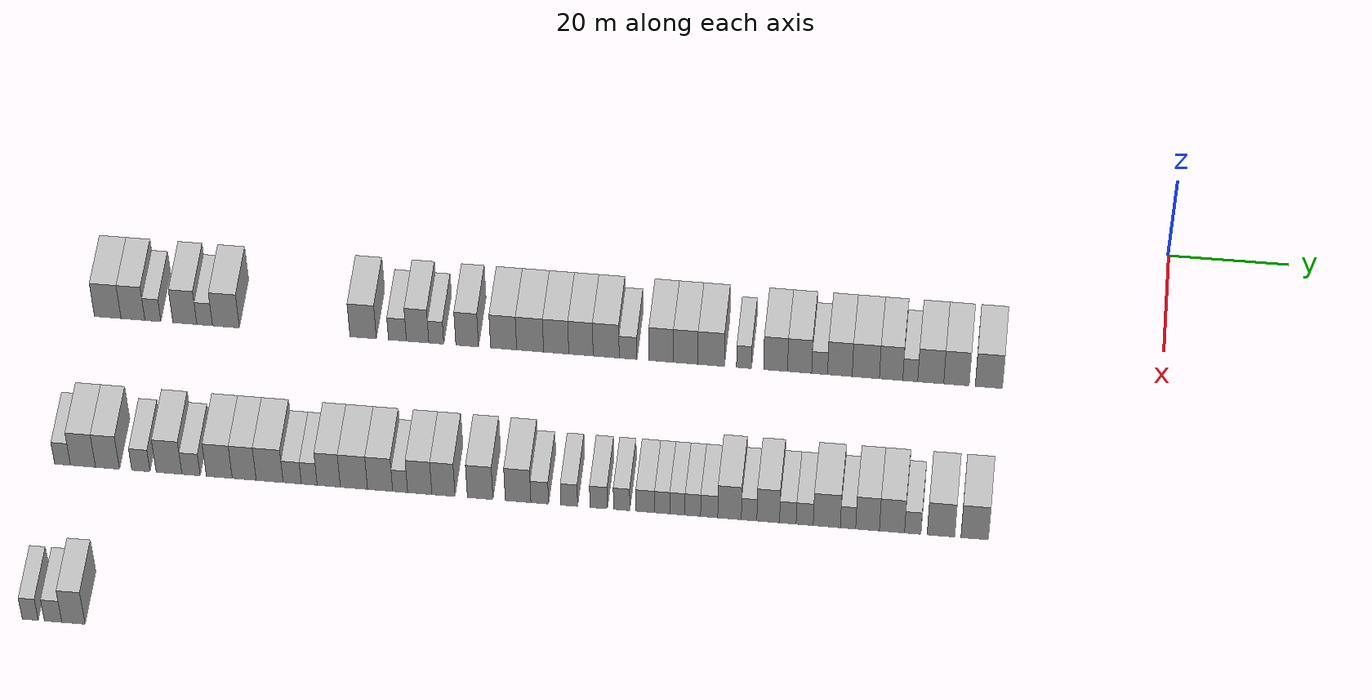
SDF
<sdf version="1.6">
 <world name="default">
  <model name="building_80">
   <static>1</static>
   <pose>25.0000 -173.6618 0 0.000000 0.000000 0.000000</pose>
   <link name="link">
    <pose>0 0 4.50 0 0 0</pose>
    <collision name="collision"><geometry><box><size>10.0000 4.4266 9.0000</size></box></geometry></collision>
    <visual name="visual">
     <cast_shadows>0</cast_shadows>
     <geometry><box><size>10.0000 4.4266 9.0000</size></box></geometry>
     <material>
      <script>
       <uri>model://HANNAS_wall/materials/scripts</uri>
       <uri>model://HANNAS_wall/materials/textures</uri>
       <name>vrc/HANNAS_wall</name>
      </script>
     </material>
    </visual>
   </link>
  </model>
  <model name="building_81">
   <static>1</static>
   <pose>25.0000 -169.4573 0 0.000000 0.000000 0.000000</pose>
   <link name="link">
    <pose>0 0 4.50 0 0 0</pose>
    <collision name="collision"><geometry><box><size>10.0000 3.9823 9.0000</size></box></geometry></collision>
    <visual name="visual">
     <cast_shadows>0</cast_shadows>
     <geometry><box><size>10.0000 3.9823 9.0000</size></box></geometry>
     <material>
      <script>
       <uri>model://HANNAS_wall/materials/scripts</uri>
       <uri>model://HANNAS_wall/materials/textures</uri>
       <name>vrc/HANNAS_wall</name>
      </script>
     </material>
    </visual>
   </link>
  </model>
  <model name="building_82">
   <static>1</static>
   <pose>25.0000 -166.1337 0 0.000000 0.000000 0.000000</pose>
   <link name="link">
    <pose>0 0 3.00 0 0 0</pose>
    <collision name="collision"><geometry><box><size>10.0000 2.6650 6.0000</size></box></geometry></collision>
    <visual name="visual">
     <cast_shadows>0</cast_shadows>
     <geometry><box><size>10.0000 2.6650 6.0000</size></box></geometry>
     <material>
      <script>
       <uri>model://HANNAS_wall/materials/scripts</uri>
       <uri>model://HANNAS_wall/materials/textures</uri>
       <name>vrc/HANNAS_wall</name>
      </script>
     </material>
    </visual>
   </link>
  </model>
  <model name="building_83">
   <static>1</static>
   <pose>25.0000 -160.8028 0 0.000000 0.000000 0.000000</pose>
   <link name="link">
    <pose>0 0 4.50 0 0 0</pose>
    <collision name="collision"><geometry><box><size>10.0000 3.9967 9.0000</size></box></geometry></collision>
    <visual name="visual">
     <cast_shadows>0</cast_shadows>
     <geometry><box><size>10.0000 3.9967 9.0000</size></box></geometry>
     <material>
      <script>
       <uri>model://HANNAS_wall/materials/scripts</uri>
       <uri>model://HANNAS_wall/materials/textures</uri>
       <name>vrc/HANNAS_wall</name>
      </script>
     </material>
    </visual>
   </link>
  </model>
  <model name="building_84">
   <static>1</static>
   <pose>25.0000 -157.5020 0 0.000000 0.000000 0.000000</pose>
   <link name="link">
    <pose>0 0 3.00 0 0 0</pose>
    <collision name="collision"><geometry><box><size>10.0000 2.6050 6.0000</size></box></geometry></collision>
    <visual name="visual">
     <cast_shadows>0</cast_shadows>
     <geometry><box><size>10.0000 2.6050 6.0000</size></box></geometry>
     <material>
      <script>
       <uri>model://HANNAS_wall/materials/scripts</uri>
       <uri>model://HANNAS_wall/materials/textures</uri>
       <name>vrc/HANNAS_wall</name>
      </script>
     </material>
    </visual>
   </link>
  </model>
  <model name="building_85">
   <static>1</static>
   <pose>25.0000 -153.9610 0 0.000000 0.000000 0.000000</pose>
   <link name="link">
    <pose>0 0 4.50 0 0 0</pose>
    <collision name="collision"><geometry><box><size>10.0000 4.4769 9.0000</size></box></geometry></collision>
    <visual name="visual">
     <cast_shadows>0</cast_shadows>
     <geometry><box><size>10.0000 4.4769 9.0000</size></box></geometry>
     <material>
      <script>
       <uri>model://HANNAS_wall/materials/scripts</uri>
       <uri>model://HANNAS_wall/materials/textures</uri>
       <name>vrc/HANNAS_wall</name>
      </script>
     </material>
    </visual>
   </link>
  </model>
  <model name="building_86">
   <static>1</static>
   <pose>25.0000 -131.1573 0 0.000000 0.000000 0.000000</pose>
   <link name="link">
    <pose>0 0 4.50 0 0 0</pose>
    <collision name="collision"><geometry><box><size>10.0000 4.3769 9.0000</size></box></geometry></collision>
    <visual name="visual">
     <cast_shadows>0</cast_shadows>
     <geometry><box><size>10.0000 4.3769 9.0000</size></box></geometry>
     <material>
      <script>
       <uri>model://HANNAS_wall/materials/scripts</uri>
       <uri>model://HANNAS_wall/materials/textures</uri>
       <name>vrc/HANNAS_wall</name>
      </script>
     </material>
    </visual>
   </link>
  </model>
  <model name="building_87">
   <static>1</static>
   <pose>25.0000 -125.4782 0 0.000000 0.000000 0.000000</pose>
   <link name="link">
    <pose>0 0 3.00 0 0 0</pose>
    <collision name="collision"><geometry><box><size>10.0000 2.9813 6.0000</size></box></geometry></collision>
    <visual name="visual">
     <cast_shadows>0</cast_shadows>
     <geometry><box><size>10.0000 2.9813 6.0000</size></box></geometry>
     <material>
      <script>
       <uri>model://HANNAS_wall/materials/scripts</uri>
       <uri>model://HANNAS_wall/materials/textures</uri>
       <name>vrc/HANNAS_wall</name>
      </script>
     </material>
    </visual>
   </link>
  </model>
  <model name="building_88">
   <static>1</static>
   <pose>25.0000 -122.1337 0 0.000000 0.000000 0.000000</pose>
   <link name="link">
    <pose>0 0 4.50 0 0 0</pose>
    <collision name="collision"><geometry><box><size>10.0000 3.7076 9.0000</size></box></geometry></collision>
    <visual name="visual">
     <cast_shadows>0</cast_shadows>
     <geometry><box><size>10.0000 3.7076 9.0000</size></box></geometry>
     <material>
      <script>
       <uri>model://HANNAS_wall/materials/scripts</uri>
       <uri>model://HANNAS_wall/materials/textures</uri>
       <name>vrc/HANNAS_wall</name>
      </script>
     </material>
    </visual>
   </link>
  </model>
  <model name="building_89">
   <static>1</static>
   <pose>25.0000 -119.0433 0 0.000000 0.000000 0.000000</pose>
   <link name="link">
    <pose>0 0 3.00 0 0 0</pose>
    <collision name="collision"><geometry><box><size>10.0000 2.4733 6.0000</size></box></geometry></collision>
    <visual name="visual">
     <cast_shadows>0</cast_shadows>
     <geometry><box><size>10.0000 2.4733 6.0000</size></box></geometry>
     <material>
      <script>
       <uri>model://HANNAS_wall/materials/scripts</uri>
       <uri>model://HANNAS_wall/materials/textures</uri>
       <name>vrc/HANNAS_wall</name>
      </script>
     </material>
    </visual>
   </link>
  </model>
  <model name="building_90">
   <static>1</static>
   <pose>25.0000 -113.9285 0 0.000000 0.000000 0.000000</pose>
   <link name="link">
    <pose>0 0 4.50 0 0 0</pose>
    <collision name="collision"><geometry><box><size>10.0000 3.7564 9.0000</size></box></geometry></collision>
    <visual name="visual">
     <cast_shadows>0</cast_shadows>
     <geometry><box><size>10.0000 3.7564 9.0000</size></box></geometry>
     <material>
      <script>
       <uri>model://HANNAS_wall/materials/scripts</uri>
       <uri>model://HANNAS_wall/materials/textures</uri>
       <name>vrc/HANNAS_wall</name>
      </script>
     </material>
    </visual>
   </link>
  </model>
  <model name="building_91">
   <static>1</static>
   <pose>25.0000 -107.8970 0 0.000000 0.000000 0.000000</pose>
   <link name="link">
    <pose>0 0 4.50 0 0 0</pose>
    <collision name="collision"><geometry><box><size>10.0000 4.3066 9.0000</size></box></geometry></collision>
    <visual name="visual">
     <cast_shadows>0</cast_shadows>
     <geometry><box><size>10.0000 4.3066 9.0000</size></box></geometry>
     <material>
      <script>
       <uri>model://HANNAS_wall/materials/scripts</uri>
       <uri>model://HANNAS_wall/materials/textures</uri>
       <name>vrc/HANNAS_wall</name>
      </script>
     </material>
    </visual>
   </link>
  </model>
  <model name="building_92">
   <static>1</static>
   <pose>25.0000 -103.5173 0 0.000000 0.000000 0.000000</pose>
   <link name="link">
    <pose>0 0 4.50 0 0 0</pose>
    <collision name="collision"><geometry><box><size>10.0000 4.4529 9.0000</size></box></geometry></collision>
    <visual name="visual">
     <cast_shadows>0</cast_shadows>
     <geometry><box><size>10.0000 4.4529 9.0000</size></box></geometry>
     <material>
      <script>
       <uri>model://HANNAS_wall/materials/scripts</uri>
       <uri>model://HANNAS_wall/materials/textures</uri>
       <name>vrc/HANNAS_wall</name>
      </script>
     </material>
    </visual>
   </link>
  </model>
  <model name="building_93">
   <static>1</static>
   <pose>25.0000 -99.2168 0 0.000000 0.000000 0.000000</pose>
   <link name="link">
    <pose>0 0 4.50 0 0 0</pose>
    <collision name="collision"><geometry><box><size>10.0000 4.1479 9.0000</size></box></geometry></collision>
    <visual name="visual">
     <cast_shadows>0</cast_shadows>
     <geometry><box><size>10.0000 4.1479 9.0000</size></box></geometry>
     <material>
      <script>
       <uri>model://HANNAS_wall/materials/scripts</uri>
       <uri>model://HANNAS_wall/materials/textures</uri>
       <name>vrc/HANNAS_wall</name>
      </script>
     </material>
    </visual>
   </link>
  </model>
  <model name="building_94">
   <static>1</static>
   <pose>25.0000 -95.1289 0 0.000000 0.000000 0.000000</pose>
   <link name="link">
    <pose>0 0 4.50 0 0 0</pose>
    <collision name="collision"><geometry><box><size>10.0000 4.0280 9.0000</size></box></geometry></collision>
    <visual name="visual">
     <cast_shadows>0</cast_shadows>
     <geometry><box><size>10.0000 4.0280 9.0000</size></box></geometry>
     <material>
      <script>
       <uri>model://HANNAS_wall/materials/scripts</uri>
       <uri>model://HANNAS_wall/materials/textures</uri>
       <name>vrc/HANNAS_wall</name>
      </script>
     </material>
    </visual>
   </link>
  </model>
  <model name="building_95">
   <static>1</static>
   <pose>25.0000 -90.9672 0 0.000000 0.000000 0.000000</pose>
   <link name="link">
    <pose>0 0 4.50 0 0 0</pose>
    <collision name="collision"><geometry><box><size>10.0000 4.2955 9.0000</size></box></geometry></collision>
    <visual name="visual">
     <cast_shadows>0</cast_shadows>
     <geometry><box><size>10.0000 4.2955 9.0000</size></box></geometry>
     <material>
      <script>
       <uri>model://HANNAS_wall/materials/scripts</uri>
       <uri>model://HANNAS_wall/materials/textures</uri>
       <name>vrc/HANNAS_wall</name>
      </script>
     </material>
    </visual>
   </link>
  </model>
  <model name="building_96">
   <static>1</static>
   <pose>25.0000 -87.3544 0 0.000000 0.000000 0.000000</pose>
   <link name="link">
    <pose>0 0 3.00 0 0 0</pose>
    <collision name="collision"><geometry><box><size>10.0000 2.9301 6.0000</size></box></geometry></collision>
    <visual name="visual">
     <cast_shadows>0</cast_shadows>
     <geometry><box><size>10.0000 2.9301 6.0000</size></box></geometry>
     <material>
      <script>
       <uri>model://HANNAS_wall/materials/scripts</uri>
       <uri>model://HANNAS_wall/materials/textures</uri>
       <name>vrc/HANNAS_wall</name>
      </script>
     </material>
    </visual>
   </link>
  </model>
  <model name="building_97">
   <static>1</static>
   <pose>25.0000 -81.8790 0 0.000000 0.000000 0.000000</pose>
   <link name="link">
    <pose>0 0 4.50 0 0 0</pose>
    <collision name="collision"><geometry><box><size>10.0000 4.0208 9.0000</size></box></geometry></collision>
    <visual name="visual">
     <cast_shadows>0</cast_shadows>
     <geometry><box><size>10.0000 4.0208 9.0000</size></box></geometry>
     <material>
      <script>
       <uri>model://HANNAS_wall/materials/scripts</uri>
       <uri>model://HANNAS_wall/materials/textures</uri>
       <name>vrc/HANNAS_wall</name>
      </script>
     </material>
    </visual>
   </link>
  </model>
  <model name="building_98">
   <static>1</static>
   <pose>25.0000 -77.8488 0 0.000000 0.000000 0.000000</pose>
   <link name="link">
    <pose>0 0 4.50 0 0 0</pose>
    <collision name="collision"><geometry><box><size>10.0000 4.0396 9.0000</size></box></geometry></collision>
    <visual name="visual">
     <cast_shadows>0</cast_shadows>
     <geometry><box><size>10.0000 4.0396 9.0000</size></box></geometry>
     <material>
      <script>
       <uri>model://HANNAS_wall/materials/scripts</uri>
       <uri>model://HANNAS_wall/materials/textures</uri>
       <name>vrc/HANNAS_wall</name>
      </script>
     </material>
    </visual>
   </link>
  </model>
  <model name="building_99">
   <static>1</static>
   <pose>25.0000 -73.6658 0 0.000000 0.000000 0.000000</pose>
   <link name="link">
    <pose>0 0 4.50 0 0 0</pose>
    <collision name="collision"><geometry><box><size>10.0000 4.3265 9.0000</size></box></geometry></collision>
    <visual name="visual">
     <cast_shadows>0</cast_shadows>
     <geometry><box><size>10.0000 4.3265 9.0000</size></box></geometry>
     <material>
      <script>
       <uri>model://HANNAS_wall/materials/scripts</uri>
       <uri>model://HANNAS_wall/materials/textures</uri>
       <name>vrc/HANNAS_wall</name>
      </script>
     </material>
    </visual>
   </link>
  </model>
  <model name="building_100">
   <static>1</static>
   <pose>25.0000 -68.2700 0 0.000000 0.000000 0.000000</pose>
   <link name="link">
    <pose>0 0 3.00 0 0 0</pose>
    <collision name="collision"><geometry><box><size>10.0000 2.4651 6.0000</size></box></geometry></collision>
    <visual name="visual">
     <cast_shadows>0</cast_shadows>
     <geometry><box><size>10.0000 2.4651 6.0000</size></box></geometry>
     <material>
      <script>
       <uri>model://HANNAS_wall/materials/scripts</uri>
       <uri>model://HANNAS_wall/materials/textures</uri>
       <name>vrc/HANNAS_wall</name>
      </script>
     </material>
    </visual>
   </link>
  </model>
  <model name="building_101">
   <static>1</static>
   <pose>25.0000 -63.0754 0 0.000000 0.000000 0.000000</pose>
   <link name="link">
    <pose>0 0 4.50 0 0 0</pose>
    <collision name="collision"><geometry><box><size>10.0000 3.9240 9.0000</size></box></geometry></collision>
    <visual name="visual">
     <cast_shadows>0</cast_shadows>
     <geometry><box><size>10.0000 3.9240 9.0000</size></box></geometry>
     <material>
      <script>
       <uri>model://HANNAS_wall/materials/scripts</uri>
       <uri>model://HANNAS_wall/materials/textures</uri>
       <name>vrc/HANNAS_wall</name>
      </script>
     </material>
    </visual>
   </link>
  </model>
  <model name="building_102">
   <static>1</static>
   <pose>25.0000 -59.1349 0 0.000000 0.000000 0.000000</pose>
   <link name="link">
    <pose>0 0 4.50 0 0 0</pose>
    <collision name="collision"><geometry><box><size>10.0000 3.9571 9.0000</size></box></geometry></collision>
    <visual name="visual">
     <cast_shadows>0</cast_shadows>
     <geometry><box><size>10.0000 3.9571 9.0000</size></box></geometry>
     <material>
      <script>
       <uri>model://HANNAS_wall/materials/scripts</uri>
       <uri>model://HANNAS_wall/materials/textures</uri>
       <name>vrc/HANNAS_wall</name>
      </script>
     </material>
    </visual>
   </link>
  </model>
  <model name="building_103">
   <static>1</static>
   <pose>25.0000 -55.8554 0 0.000000 0.000000 0.000000</pose>
   <link name="link">
    <pose>0 0 3.00 0 0 0</pose>
    <collision name="collision"><geometry><box><size>10.0000 2.6018 6.0000</size></box></geometry></collision>
    <visual name="visual">
     <cast_shadows>0</cast_shadows>
     <geometry><box><size>10.0000 2.6018 6.0000</size></box></geometry>
     <material>
      <script>
       <uri>model://HANNAS_wall/materials/scripts</uri>
       <uri>model://HANNAS_wall/materials/textures</uri>
       <name>vrc/HANNAS_wall</name>
      </script>
     </material>
    </visual>
   </link>
  </model>
  <model name="building_104">
   <static>1</static>
   <pose>25.0000 -52.5349 0 0.000000 0.000000 0.000000</pose>
   <link name="link">
    <pose>0 0 4.50 0 0 0</pose>
    <collision name="collision"><geometry><box><size>10.0000 4.0392 9.0000</size></box></geometry></collision>
    <visual name="visual">
     <cast_shadows>0</cast_shadows>
     <geometry><box><size>10.0000 4.0392 9.0000</size></box></geometry>
     <material>
      <script>
       <uri>model://HANNAS_wall/materials/scripts</uri>
       <uri>model://HANNAS_wall/materials/textures</uri>
       <name>vrc/HANNAS_wall</name>
      </script>
     </material>
    </visual>
   </link>
  </model>
  <model name="building_105">
   <static>1</static>
   <pose>25.0000 -48.2838 0 0.000000 0.000000 0.000000</pose>
   <link name="link">
    <pose>0 0 4.50 0 0 0</pose>
    <collision name="collision"><geometry><box><size>10.0000 4.4631 9.0000</size></box></geometry></collision>
    <visual name="visual">
     <cast_shadows>0</cast_shadows>
     <geometry><box><size>10.0000 4.4631 9.0000</size></box></geometry>
     <material>
      <script>
       <uri>model://HANNAS_wall/materials/scripts</uri>
       <uri>model://HANNAS_wall/materials/textures</uri>
       <name>vrc/HANNAS_wall</name>
      </script>
     </material>
    </visual>
   </link>
  </model>
  <model name="building_106">
   <static>1</static>
   <pose>25.0000 -44.1364 0 0.000000 0.000000 0.000000</pose>
   <link name="link">
    <pose>0 0 4.50 0 0 0</pose>
    <collision name="collision"><geometry><box><size>10.0000 3.8316 9.0000</size></box></geometry></collision>
    <visual name="visual">
     <cast_shadows>0</cast_shadows>
     <geometry><box><size>10.0000 3.8316 9.0000</size></box></geometry>
     <material>
      <script>
       <uri>model://HANNAS_wall/materials/scripts</uri>
       <uri>model://HANNAS_wall/materials/textures</uri>
       <name>vrc/HANNAS_wall</name>
      </script>
     </material>
    </visual>
   </link>
  </model>
  <model name="building_107">
   <static>1</static>
   <pose>25.0000 -40.9975 0 0.000000 0.000000 0.000000</pose>
   <link name="link">
    <pose>0 0 3.00 0 0 0</pose>
    <collision name="collision"><geometry><box><size>10.0000 2.4463 6.0000</size></box></geometry></collision>
    <visual name="visual">
     <cast_shadows>0</cast_shadows>
     <geometry><box><size>10.0000 2.4463 6.0000</size></box></geometry>
     <material>
      <script>
       <uri>model://HANNAS_wall/materials/scripts</uri>
       <uri>model://HANNAS_wall/materials/textures</uri>
       <name>vrc/HANNAS_wall</name>
      </script>
     </material>
    </visual>
   </link>
  </model>
  <model name="building_108">
   <static>1</static>
   <pose>25.0000 -37.6462 0 0.000000 0.000000 0.000000</pose>
   <link name="link">
    <pose>0 0 4.50 0 0 0</pose>
    <collision name="collision"><geometry><box><size>10.0000 4.2563 9.0000</size></box></geometry></collision>
    <visual name="visual">
     <cast_shadows>0</cast_shadows>
     <geometry><box><size>10.0000 4.2563 9.0000</size></box></geometry>
     <material>
      <script>
       <uri>model://HANNAS_wall/materials/scripts</uri>
       <uri>model://HANNAS_wall/materials/textures</uri>
       <name>vrc/HANNAS_wall</name>
      </script>
     </material>
    </visual>
   </link>
  </model>
  <model name="building_109">
   <static>1</static>
   <pose>25.0000 -33.4382 0 0.000000 0.000000 0.000000</pose>
   <link name="link">
    <pose>0 0 4.50 0 0 0</pose>
    <collision name="collision"><geometry><box><size>10.0000 4.1598 9.0000</size></box></geometry></collision>
    <visual name="visual">
     <cast_shadows>0</cast_shadows>
     <geometry><box><size>10.0000 4.1598 9.0000</size></box></geometry>
     <material>
      <script>
       <uri>model://HANNAS_wall/materials/scripts</uri>
       <uri>model://HANNAS_wall/materials/textures</uri>
       <name>vrc/HANNAS_wall</name>
      </script>
     </material>
    </visual>
   </link>
  </model>
  <model name="building_110">
   <static>1</static>
   <pose>25.0000 -28.1421 0 0.000000 0.000000 0.000000</pose>
   <link name="link">
    <pose>0 0 4.50 0 0 0</pose>
    <collision name="collision"><geometry><box><size>10.0000 4.4325 9.0000</size></box></geometry></collision>
    <visual name="visual">
     <cast_shadows>0</cast_shadows>
     <geometry><box><size>10.0000 4.4325 9.0000</size></box></geometry>
     <material>
      <script>
       <uri>model://HANNAS_wall/materials/scripts</uri>
       <uri>model://HANNAS_wall/materials/textures</uri>
       <name>vrc/HANNAS_wall</name>
      </script>
     </material>
    </visual>
   </link>
  </model>
  <model name="building_316">
   <static>1</static>
   <pose>55.0000 -175.9627 0 0.000000 0.000000 0.000000</pose>
   <link name="link">
    <pose>0 0 3.00 0 0 0</pose>
    <collision name="collision"><geometry><box><size>10.0000 2.5865 6.0000</size></box></geometry></collision>
    <visual name="visual">
     <cast_shadows>0</cast_shadows>
     <geometry><box><size>10.0000 2.5865 6.0000</size></box></geometry>
     <material>
      <script>
       <uri>model://HANNAS_wall/materials/scripts</uri>
       <uri>model://HANNAS_wall/materials/textures</uri>
       <name>vrc/HANNAS_wall</name>
      </script>
     </material>
    </visual>
   </link>
  </model>
  <model name="building_317">
   <static>1</static>
   <pose>55.0000 -172.6250 0 0.000000 0.000000 0.000000</pose>
   <link name="link">
    <pose>0 0 4.50 0 0 0</pose>
    <collision name="collision"><geometry><box><size>10.0000 4.0890 9.0000</size></box></geometry></collision>
    <visual name="visual">
     <cast_shadows>0</cast_shadows>
     <geometry><box><size>10.0000 4.0890 9.0000</size></box></geometry>
     <material>
      <script>
       <uri>model://HANNAS_wall/materials/scripts</uri>
       <uri>model://HANNAS_wall/materials/textures</uri>
       <name>vrc/HANNAS_wall</name>
      </script>
     </material>
    </visual>
   </link>
  </model>
  <model name="building_318">
   <static>1</static>
   <pose>55.0000 -168.6193 0 0.000000 0.000000 0.000000</pose>
   <link name="link">
    <pose>0 0 4.50 0 0 0</pose>
    <collision name="collision"><geometry><box><size>10.0000 3.9224 9.0000</size></box></geometry></collision>
    <visual name="visual">
     <cast_shadows>0</cast_shadows>
     <geometry><box><size>10.0000 3.9224 9.0000</size></box></geometry>
     <material>
      <script>
       <uri>model://HANNAS_wall/materials/scripts</uri>
       <uri>model://HANNAS_wall/materials/textures</uri>
       <name>vrc/HANNAS_wall</name>
      </script>
     </material>
    </visual>
   </link>
  </model>
  <model name="building_319">
   <static>1</static>
   <pose>55.0000 -163.1710 0 0.000000 0.000000 0.000000</pose>
   <link name="link">
    <pose>0 0 3.00 0 0 0</pose>
    <collision name="collision"><geometry><box><size>10.0000 2.9742 6.0000</size></box></geometry></collision>
    <visual name="visual">
     <cast_shadows>0</cast_shadows>
     <geometry><box><size>10.0000 2.9742 6.0000</size></box></geometry>
     <material>
      <script>
       <uri>model://HANNAS_wall/materials/scripts</uri>
       <uri>model://HANNAS_wall/materials/textures</uri>
       <name>vrc/HANNAS_wall</name>
      </script>
     </material>
    </visual>
   </link>
  </model>
  <model name="building_320">
   <static>1</static>
   <pose>55.0000 -158.5833 0 0.000000 0.000000 0.000000</pose>
   <link name="link">
    <pose>0 0 4.50 0 0 0</pose>
    <collision name="collision"><geometry><box><size>10.0000 4.2012 9.0000</size></box></geometry></collision>
    <visual name="visual">
     <cast_shadows>0</cast_shadows>
     <geometry><box><size>10.0000 4.2012 9.0000</size></box></geometry>
     <material>
      <script>
       <uri>model://HANNAS_wall/materials/scripts</uri>
       <uri>model://HANNAS_wall/materials/textures</uri>
       <name>vrc/HANNAS_wall</name>
      </script>
     </material>
    </visual>
   </link>
  </model>
  <model name="building_321">
   <static>1</static>
   <pose>55.0000 -154.9942 0 0.000000 0.000000 0.000000</pose>
   <link name="link">
    <pose>0 0 3.00 0 0 0</pose>
    <collision name="collision"><geometry><box><size>10.0000 2.9769 6.0000</size></box></geometry></collision>
    <visual name="visual">
     <cast_shadows>0</cast_shadows>
     <geometry><box><size>10.0000 2.9769 6.0000</size></box></geometry>
     <material>
      <script>
       <uri>model://HANNAS_wall/materials/scripts</uri>
       <uri>model://HANNAS_wall/materials/textures</uri>
       <name>vrc/HANNAS_wall</name>
      </script>
     </material>
    </visual>
   </link>
  </model>
  <model name="building_322">
   <static>1</static>
   <pose>55.0000 -150.3999 0 0.000000 0.000000 0.000000</pose>
   <link name="link">
    <pose>0 0 4.50 0 0 0</pose>
    <collision name="collision"><geometry><box><size>10.0000 4.2117 9.0000</size></box></geometry></collision>
    <visual name="visual">
     <cast_shadows>0</cast_shadows>
     <geometry><box><size>10.0000 4.2117 9.0000</size></box></geometry>
     <material>
      <script>
       <uri>model://HANNAS_wall/materials/scripts</uri>
       <uri>model://HANNAS_wall/materials/textures</uri>
       <name>vrc/HANNAS_wall</name>
      </script>
     </material>
    </visual>
   </link>
  </model>
  <model name="building_323">
   <static>1</static>
   <pose>55.0000 -146.3514 0 0.000000 0.000000 0.000000</pose>
   <link name="link">
    <pose>0 0 4.50 0 0 0</pose>
    <collision name="collision"><geometry><box><size>10.0000 3.8853 9.0000</size></box></geometry></collision>
    <visual name="visual">
     <cast_shadows>0</cast_shadows>
     <geometry><box><size>10.0000 3.8853 9.0000</size></box></geometry>
     <material>
      <script>
       <uri>model://HANNAS_wall/materials/scripts</uri>
       <uri>model://HANNAS_wall/materials/textures</uri>
       <name>vrc/HANNAS_wall</name>
      </script>
     </material>
    </visual>
   </link>
  </model>
  <model name="building_324">
   <static>1</static>
   <pose>55.0000 -142.2101 0 0.000000 0.000000 0.000000</pose>
   <link name="link">
    <pose>0 0 4.50 0 0 0</pose>
    <collision name="collision"><geometry><box><size>10.0000 4.3973 9.0000</size></box></geometry></collision>
    <visual name="visual">
     <cast_shadows>0</cast_shadows>
     <geometry><box><size>10.0000 4.3973 9.0000</size></box></geometry>
     <material>
      <script>
       <uri>model://HANNAS_wall/materials/scripts</uri>
       <uri>model://HANNAS_wall/materials/textures</uri>
       <name>vrc/HANNAS_wall</name>
      </script>
     </material>
    </visual>
   </link>
  </model>
  <model name="building_325">
   <static>1</static>
   <pose>55.0000 -138.5383 0 0.000000 0.000000 0.000000</pose>
   <link name="link">
    <pose>0 0 3.00 0 0 0</pose>
    <collision name="collision"><geometry><box><size>10.0000 2.9463 6.0000</size></box></geometry></collision>
    <visual name="visual">
     <cast_shadows>0</cast_shadows>
     <geometry><box><size>10.0000 2.9463 6.0000</size></box></geometry>
     <material>
      <script>
       <uri>model://HANNAS_wall/materials/scripts</uri>
       <uri>model://HANNAS_wall/materials/textures</uri>
       <name>vrc/HANNAS_wall</name>
      </script>
     </material>
    </visual>
   </link>
  </model>
  <model name="building_326">
   <static>1</static>
   <pose>55.0000 -135.7774 0 0.000000 0.000000 0.000000</pose>
   <link name="link">
    <pose>0 0 3.00 0 0 0</pose>
    <collision name="collision"><geometry><box><size>10.0000 2.5756 6.0000</size></box></geometry></collision>
    <visual name="visual">
     <cast_shadows>0</cast_shadows>
     <geometry><box><size>10.0000 2.5756 6.0000</size></box></geometry>
     <material>
      <script>
       <uri>model://HANNAS_wall/materials/scripts</uri>
       <uri>model://HANNAS_wall/materials/textures</uri>
       <name>vrc/HANNAS_wall</name>
      </script>
     </material>
    </visual>
   </link>
  </model>
  <model name="building_327">
   <static>1</static>
   <pose>55.0000 -132.6070 0 0.000000 0.000000 0.000000</pose>
   <link name="link">
    <pose>0 0 4.50 0 0 0</pose>
    <collision name="collision"><geometry><box><size>10.0000 3.7653 9.0000</size></box></geometry></collision>
    <visual name="visual">
     <cast_shadows>0</cast_shadows>
     <geometry><box><size>10.0000 3.7653 9.0000</size></box></geometry>
     <material>
      <script>
       <uri>model://HANNAS_wall/materials/scripts</uri>
       <uri>model://HANNAS_wall/materials/textures</uri>
       <name>vrc/HANNAS_wall</name>
      </script>
     </material>
    </visual>
   </link>
  </model>
  <model name="building_328">
   <static>1</static>
   <pose>55.0000 -128.5197 0 0.000000 0.000000 0.000000</pose>
   <link name="link">
    <pose>0 0 4.50 0 0 0</pose>
    <collision name="collision"><geometry><box><size>10.0000 4.4091 9.0000</size></box></geometry></collision>
    <visual name="visual">
     <cast_shadows>0</cast_shadows>
     <geometry><box><size>10.0000 4.4091 9.0000</size></box></geometry>
     <material>
      <script>
       <uri>model://HANNAS_wall/materials/scripts</uri>
       <uri>model://HANNAS_wall/materials/textures</uri>
       <name>vrc/HANNAS_wall</name>
      </script>
     </material>
    </visual>
   </link>
  </model>
  <model name="building_329">
   <static>1</static>
   <pose>55.0000 -124.2788 0 0.000000 0.000000 0.000000</pose>
   <link name="link">
    <pose>0 0 4.50 0 0 0</pose>
    <collision name="collision"><geometry><box><size>10.0000 4.0727 9.0000</size></box></geometry></collision>
    <visual name="visual">
     <cast_shadows>0</cast_shadows>
     <geometry><box><size>10.0000 4.0727 9.0000</size></box></geometry>
     <material>
      <script>
       <uri>model://HANNAS_wall/materials/scripts</uri>
       <uri>model://HANNAS_wall/materials/textures</uri>
       <name>vrc/HANNAS_wall</name>
      </script>
     </material>
    </visual>
   </link>
  </model>
  <model name="building_330">
   <static>1</static>
   <pose>55.0000 -121.0303 0 0.000000 0.000000 0.000000</pose>
   <link name="link">
    <pose>0 0 3.00 0 0 0</pose>
    <collision name="collision"><geometry><box><size>10.0000 2.4244 6.0000</size></box></geometry></collision>
    <visual name="visual">
     <cast_shadows>0</cast_shadows>
     <geometry><box><size>10.0000 2.4244 6.0000</size></box></geometry>
     <material>
      <script>
       <uri>model://HANNAS_wall/materials/scripts</uri>
       <uri>model://HANNAS_wall/materials/textures</uri>
       <name>vrc/HANNAS_wall</name>
      </script>
     </material>
    </visual>
   </link>
  </model>
  <model name="building_331">
   <static>1</static>
   <pose>55.0000 -117.8527 0 0.000000 0.000000 0.000000</pose>
   <link name="link">
    <pose>0 0 4.50 0 0 0</pose>
    <collision name="collision"><geometry><box><size>10.0000 3.9308 9.0000</size></box></geometry></collision>
    <visual name="visual">
     <cast_shadows>0</cast_shadows>
     <geometry><box><size>10.0000 3.9308 9.0000</size></box></geometry>
     <material>
      <script>
       <uri>model://HANNAS_wall/materials/scripts</uri>
       <uri>model://HANNAS_wall/materials/textures</uri>
       <name>vrc/HANNAS_wall</name>
      </script>
     </material>
    </visual>
   </link>
  </model>
  <model name="building_332">
   <static>1</static>
   <pose>55.0000 -114.0162 0 0.000000 0.000000 0.000000</pose>
   <link name="link">
    <pose>0 0 4.50 0 0 0</pose>
    <collision name="collision"><geometry><box><size>10.0000 3.7423 9.0000</size></box></geometry></collision>
    <visual name="visual">
     <cast_shadows>0</cast_shadows>
     <geometry><box><size>10.0000 3.7423 9.0000</size></box></geometry>
     <material>
      <script>
       <uri>model://HANNAS_wall/materials/scripts</uri>
       <uri>model://HANNAS_wall/materials/textures</uri>
       <name>vrc/HANNAS_wall</name>
      </script>
     </material>
    </visual>
   </link>
  </model>
  <model name="building_333">
   <static>1</static>
   <pose>55.0000 -108.0808 0 0.000000 0.000000 0.000000</pose>
   <link name="link">
    <pose>0 0 4.50 0 0 0</pose>
    <collision name="collision"><geometry><box><size>10.0000 4.1284 9.0000</size></box></geometry></collision>
    <visual name="visual">
     <cast_shadows>0</cast_shadows>
     <geometry><box><size>10.0000 4.1284 9.0000</size></box></geometry>
     <material>
      <script>
       <uri>model://HANNAS_wall/materials/scripts</uri>
       <uri>model://HANNAS_wall/materials/textures</uri>
       <name>vrc/HANNAS_wall</name>
      </script>
     </material>
    </visual>
   </link>
  </model>
  <model name="building_334">
   <static>1</static>
   <pose>55.0000 -101.9489 0 0.000000 0.000000 0.000000</pose>
   <link name="link">
    <pose>0 0 4.50 0 0 0</pose>
    <collision name="collision"><geometry><box><size>10.0000 4.1355 9.0000</size></box></geometry></collision>
    <visual name="visual">
     <cast_shadows>0</cast_shadows>
     <geometry><box><size>10.0000 4.1355 9.0000</size></box></geometry>
     <material>
      <script>
       <uri>model://HANNAS_wall/materials/scripts</uri>
       <uri>model://HANNAS_wall/materials/textures</uri>
       <name>vrc/HANNAS_wall</name>
      </script>
     </material>
    </visual>
   </link>
  </model>
  <model name="building_335">
   <static>1</static>
   <pose>55.0000 -98.4523 0 0.000000 0.000000 0.000000</pose>
   <link name="link">
    <pose>0 0 3.00 0 0 0</pose>
    <collision name="collision"><geometry><box><size>10.0000 2.8578 6.0000</size></box></geometry></collision>
    <visual name="visual">
     <cast_shadows>0</cast_shadows>
     <geometry><box><size>10.0000 2.8578 6.0000</size></box></geometry>
     <material>
      <script>
       <uri>model://HANNAS_wall/materials/scripts</uri>
       <uri>model://HANNAS_wall/materials/textures</uri>
       <name>vrc/HANNAS_wall</name>
      </script>
     </material>
    </visual>
   </link>
  </model>
  <model name="building_336">
   <static>1</static>
   <pose>55.0000 -93.6800 0 0.000000 0.000000 0.000000</pose>
   <link name="link">
    <pose>0 0 3.00 0 0 0</pose>
    <collision name="collision"><geometry><box><size>10.0000 2.6867 6.0000</size></box></geometry></collision>
    <visual name="visual">
     <cast_shadows>0</cast_shadows>
     <geometry><box><size>10.0000 2.6867 6.0000</size></box></geometry>
     <material>
      <script>
       <uri>model://HANNAS_wall/materials/scripts</uri>
       <uri>model://HANNAS_wall/materials/textures</uri>
       <name>vrc/HANNAS_wall</name>
      </script>
     </material>
    </visual>
   </link>
  </model>
  <model name="building_337">
   <static>1</static>
   <pose>55.0000 -88.9327 0 0.000000 0.000000 0.000000</pose>
   <link name="link">
    <pose>0 0 3.00 0 0 0</pose>
    <collision name="collision"><geometry><box><size>10.0000 2.8080 6.0000</size></box></geometry></collision>
    <visual name="visual">
     <cast_shadows>0</cast_shadows>
     <geometry><box><size>10.0000 2.8080 6.0000</size></box></geometry>
     <material>
      <script>
       <uri>model://HANNAS_wall/materials/scripts</uri>
       <uri>model://HANNAS_wall/materials/textures</uri>
       <name>vrc/HANNAS_wall</name>
      </script>
     </material>
    </visual>
   </link>
  </model>
  <model name="building_338">
   <static>1</static>
   <pose>55.0000 -85.2208 0 0.000000 0.000000 0.000000</pose>
   <link name="link">
    <pose>0 0 3.00 0 0 0</pose>
    <collision name="collision"><geometry><box><size>10.0000 2.6157 6.0000</size></box></geometry></collision>
    <visual name="visual">
     <cast_shadows>0</cast_shadows>
     <geometry><box><size>10.0000 2.6157 6.0000</size></box></geometry>
     <material>
      <script>
       <uri>model://HANNAS_wall/materials/scripts</uri>
       <uri>model://HANNAS_wall/materials/textures</uri>
       <name>vrc/HANNAS_wall</name>
      </script>
     </material>
    </visual>
   </link>
  </model>
  <model name="building_339">
   <static>1</static>
   <pose>55.0000 -81.4130 0 0.000000 0.000000 0.000000</pose>
   <link name="link">
    <pose>0 0 3.00 0 0 0</pose>
    <collision name="collision"><geometry><box><size>10.0000 2.9997 6.0000</size></box></geometry></collision>
    <visual name="visual">
     <cast_shadows>0</cast_shadows>
     <geometry><box><size>10.0000 2.9997 6.0000</size></box></geometry>
     <material>
      <script>
       <uri>model://HANNAS_wall/materials/scripts</uri>
       <uri>model://HANNAS_wall/materials/textures</uri>
       <name>vrc/HANNAS_wall</name>
      </script>
     </material>
    </visual>
   </link>
  </model>
  <model name="building_340">
   <static>1</static>
   <pose>55.0000 -78.6913 0 0.000000 0.000000 0.000000</pose>
   <link name="link">
    <pose>0 0 3.00 0 0 0</pose>
    <collision name="collision"><geometry><box><size>10.0000 2.4437 6.0000</size></box></geometry></collision>
    <visual name="visual">
     <cast_shadows>0</cast_shadows>
     <geometry><box><size>10.0000 2.4437 6.0000</size></box></geometry>
     <material>
      <script>
       <uri>model://HANNAS_wall/materials/scripts</uri>
       <uri>model://HANNAS_wall/materials/textures</uri>
       <name>vrc/HANNAS_wall</name>
      </script>
     </material>
    </visual>
   </link>
  </model>
  <model name="building_341">
   <static>1</static>
   <pose>55.0000 -76.2408 0 0.000000 0.000000 0.000000</pose>
   <link name="link">
    <pose>0 0 3.00 0 0 0</pose>
    <collision name="collision"><geometry><box><size>10.0000 2.4574 6.0000</size></box></geometry></collision>
    <visual name="visual">
     <cast_shadows>0</cast_shadows>
     <geometry><box><size>10.0000 2.4574 6.0000</size></box></geometry>
     <material>
      <script>
       <uri>model://HANNAS_wall/materials/scripts</uri>
       <uri>model://HANNAS_wall/materials/textures</uri>
       <name>vrc/HANNAS_wall</name>
      </script>
     </material>
    </visual>
   </link>
  </model>
  <model name="building_342">
   <static>1</static>
   <pose>55.0000 -73.7635 0 0.000000 0.000000 0.000000</pose>
   <link name="link">
    <pose>0 0 3.00 0 0 0</pose>
    <collision name="collision"><geometry><box><size>10.0000 2.4972 6.0000</size></box></geometry></collision>
    <visual name="visual">
     <cast_shadows>0</cast_shadows>
     <geometry><box><size>10.0000 2.4972 6.0000</size></box></geometry>
     <material>
      <script>
       <uri>model://HANNAS_wall/materials/scripts</uri>
       <uri>model://HANNAS_wall/materials/textures</uri>
       <name>vrc/HANNAS_wall</name>
      </script>
     </material>
    </visual>
   </link>
  </model>
  <model name="building_343">
   <static>1</static>
   <pose>55.0000 -71.1363 0 0.000000 0.000000 0.000000</pose>
   <link name="link">
    <pose>0 0 3.00 0 0 0</pose>
    <collision name="collision"><geometry><box><size>10.0000 2.7573 6.0000</size></box></geometry></collision>
    <visual name="visual">
     <cast_shadows>0</cast_shadows>
     <geometry><box><size>10.0000 2.7573 6.0000</size></box></geometry>
     <material>
      <script>
       <uri>model://HANNAS_wall/materials/scripts</uri>
       <uri>model://HANNAS_wall/materials/textures</uri>
       <name>vrc/HANNAS_wall</name>
      </script>
     </material>
    </visual>
   </link>
  </model>
  <model name="building_344">
   <static>1</static>
   <pose>55.0000 -67.8600 0 0.000000 0.000000 0.000000</pose>
   <link name="link">
    <pose>0 0 4.50 0 0 0</pose>
    <collision name="collision"><geometry><box><size>10.0000 3.7953 9.0000</size></box></geometry></collision>
    <visual name="visual">
     <cast_shadows>0</cast_shadows>
     <geometry><box><size>10.0000 3.7953 9.0000</size></box></geometry>
     <material>
      <script>
       <uri>model://HANNAS_wall/materials/scripts</uri>
       <uri>model://HANNAS_wall/materials/textures</uri>
       <name>vrc/HANNAS_wall</name>
      </script>
     </material>
    </visual>
   </link>
  </model>
  <model name="building_345">
   <static>1</static>
   <pose>55.0000 -64.7177 0 0.000000 0.000000 0.000000</pose>
   <link name="link">
    <pose>0 0 3.00 0 0 0</pose>
    <collision name="collision"><geometry><box><size>10.0000 2.4893 6.0000</size></box></geometry></collision>
    <visual name="visual">
     <cast_shadows>0</cast_shadows>
     <geometry><box><size>10.0000 2.4893 6.0000</size></box></geometry>
     <material>
      <script>
       <uri>model://HANNAS_wall/materials/scripts</uri>
       <uri>model://HANNAS_wall/materials/textures</uri>
       <name>vrc/HANNAS_wall</name>
      </script>
     </material>
    </visual>
   </link>
  </model>
  <model name="building_346">
   <static>1</static>
   <pose>55.0000 -61.6490 0 0.000000 0.000000 0.000000</pose>
   <link name="link">
    <pose>0 0 4.50 0 0 0</pose>
    <collision name="collision"><geometry><box><size>10.0000 3.6480 9.0000</size></box></geometry></collision>
    <visual name="visual">
     <cast_shadows>0</cast_shadows>
     <geometry><box><size>10.0000 3.6480 9.0000</size></box></geometry>
     <material>
      <script>
       <uri>model://HANNAS_wall/materials/scripts</uri>
       <uri>model://HANNAS_wall/materials/textures</uri>
       <name>vrc/HANNAS_wall</name>
      </script>
     </material>
    </visual>
   </link>
  </model>
  <model name="building_347">
   <static>1</static>
   <pose>55.0000 -58.4973 0 0.000000 0.000000 0.000000</pose>
   <link name="link">
    <pose>0 0 3.00 0 0 0</pose>
    <collision name="collision"><geometry><box><size>10.0000 2.6554 6.0000</size></box></geometry></collision>
    <visual name="visual">
     <cast_shadows>0</cast_shadows>
     <geometry><box><size>10.0000 2.6554 6.0000</size></box></geometry>
     <material>
      <script>
       <uri>model://HANNAS_wall/materials/scripts</uri>
       <uri>model://HANNAS_wall/materials/textures</uri>
       <name>vrc/HANNAS_wall</name>
      </script>
     </material>
    </visual>
   </link>
  </model>
  <model name="building_348">
   <static>1</static>
   <pose>55.0000 -55.7962 0 0.000000 0.000000 0.000000</pose>
   <link name="link">
    <pose>0 0 3.00 0 0 0</pose>
    <collision name="collision"><geometry><box><size>10.0000 2.7467 6.0000</size></box></geometry></collision>
    <visual name="visual">
     <cast_shadows>0</cast_shadows>
     <geometry><box><size>10.0000 2.7467 6.0000</size></box></geometry>
     <material>
      <script>
       <uri>model://HANNAS_wall/materials/scripts</uri>
       <uri>model://HANNAS_wall/materials/textures</uri>
       <name>vrc/HANNAS_wall</name>
      </script>
     </material>
    </visual>
   </link>
  </model>
  <model name="building_349">
   <static>1</static>
   <pose>55.0000 -52.2490 0 0.000000 0.000000 0.000000</pose>
   <link name="link">
    <pose>0 0 4.50 0 0 0</pose>
    <collision name="collision"><geometry><box><size>10.0000 4.3479 9.0000</size></box></geometry></collision>
    <visual name="visual">
     <cast_shadows>0</cast_shadows>
     <geometry><box><size>10.0000 4.3479 9.0000</size></box></geometry>
     <material>
      <script>
       <uri>model://HANNAS_wall/materials/scripts</uri>
       <uri>model://HANNAS_wall/materials/textures</uri>
       <name>vrc/HANNAS_wall</name>
      </script>
     </material>
    </visual>
   </link>
  </model>
  <model name="building_350">
   <static>1</static>
   <pose>55.0000 -48.8457 0 0.000000 0.000000 0.000000</pose>
   <link name="link">
    <pose>0 0 3.00 0 0 0</pose>
    <collision name="collision"><geometry><box><size>10.0000 2.4586 6.0000</size></box></geometry></collision>
    <visual name="visual">
     <cast_shadows>0</cast_shadows>
     <geometry><box><size>10.0000 2.4586 6.0000</size></box></geometry>
     <material>
      <script>
       <uri>model://HANNAS_wall/materials/scripts</uri>
       <uri>model://HANNAS_wall/materials/textures</uri>
       <name>vrc/HANNAS_wall</name>
      </script>
     </material>
    </visual>
   </link>
  </model>
  <model name="building_351">
   <static>1</static>
   <pose>55.0000 -45.7126 0 0.000000 0.000000 0.000000</pose>
   <link name="link">
    <pose>0 0 4.50 0 0 0</pose>
    <collision name="collision"><geometry><box><size>10.0000 3.8077 9.0000</size></box></geometry></collision>
    <visual name="visual">
     <cast_shadows>0</cast_shadows>
     <geometry><box><size>10.0000 3.8077 9.0000</size></box></geometry>
     <material>
      <script>
       <uri>model://HANNAS_wall/materials/scripts</uri>
       <uri>model://HANNAS_wall/materials/textures</uri>
       <name>vrc/HANNAS_wall</name>
      </script>
     </material>
    </visual>
   </link>
  </model>
  <model name="building_352">
   <static>1</static>
   <pose>55.0000 -41.7989 0 0.000000 0.000000 0.000000</pose>
   <link name="link">
    <pose>0 0 4.50 0 0 0</pose>
    <collision name="collision"><geometry><box><size>10.0000 4.0195 9.0000</size></box></geometry></collision>
    <visual name="visual">
     <cast_shadows>0</cast_shadows>
     <geometry><box><size>10.0000 4.0195 9.0000</size></box></geometry>
     <material>
      <script>
       <uri>model://HANNAS_wall/materials/scripts</uri>
       <uri>model://HANNAS_wall/materials/textures</uri>
       <name>vrc/HANNAS_wall</name>
      </script>
     </material>
    </visual>
   </link>
  </model>
  <model name="building_353">
   <static>1</static>
   <pose>55.0000 -38.4755 0 0.000000 0.000000 0.000000</pose>
   <link name="link">
    <pose>0 0 3.00 0 0 0</pose>
    <collision name="collision"><geometry><box><size>10.0000 2.6273 6.0000</size></box></geometry></collision>
    <visual name="visual">
     <cast_shadows>0</cast_shadows>
     <geometry><box><size>10.0000 2.6273 6.0000</size></box></geometry>
     <material>
      <script>
       <uri>model://HANNAS_wall/materials/scripts</uri>
       <uri>model://HANNAS_wall/materials/textures</uri>
       <name>vrc/HANNAS_wall</name>
      </script>
     </material>
    </visual>
   </link>
  </model>
  <model name="building_354">
   <static>1</static>
   <pose>55.0000 -33.9585 0 0.000000 0.000000 0.000000</pose>
   <link name="link">
    <pose>0 0 4.50 0 0 0</pose>
    <collision name="collision"><geometry><box><size>10.0000 4.4069 9.0000</size></box></geometry></collision>
    <visual name="visual">
     <cast_shadows>0</cast_shadows>
     <geometry><box><size>10.0000 4.4069 9.0000</size></box></geometry>
     <material>
      <script>
       <uri>model://HANNAS_wall/materials/scripts</uri>
       <uri>model://HANNAS_wall/materials/textures</uri>
       <name>vrc/HANNAS_wall</name>
      </script>
     </material>
    </visual>
   </link>
  </model>
  <model name="building_355">
   <static>1</static>
   <pose>55.0000 -28.5675 0 0.000000 0.000000 0.000000</pose>
   <link name="link">
    <pose>0 0 4.50 0 0 0</pose>
    <collision name="collision"><geometry><box><size>10.0000 4.3750 9.0000</size></box></geometry></collision>
    <visual name="visual">
     <cast_shadows>0</cast_shadows>
     <geometry><box><size>10.0000 4.3750 9.0000</size></box></geometry>
     <material>
      <script>
       <uri>model://HANNAS_wall/materials/scripts</uri>
       <uri>model://HANNAS_wall/materials/textures</uri>
       <name>vrc/HANNAS_wall</name>
      </script>
     </material>
    </visual>
   </link>
  </model>
  <model name="building_552">
   <static>1</static>
   <pose>85.0000 -175.8785 0 0.000000 0.000000 0.000000</pose>
   <link name="link">
    <pose>0 0 3.00 0 0 0</pose>
    <collision name="collision"><geometry><box><size>10.0000 2.5406 6.0000</size></box></geometry></collision>
    <visual name="visual">
     <cast_shadows>0</cast_shadows>
     <geometry><box><size>10.0000 2.5406 6.0000</size></box></geometry>
     <material>
      <script>
       <uri>model://HANNAS_wall/materials/scripts</uri>
       <uri>model://HANNAS_wall/materials/textures</uri>
       <name>vrc/HANNAS_wall</name>
      </script>
     </material>
    </visual>
   </link>
  </model>
  <model name="building_553">
   <static>1</static>
   <pose>85.0000 -172.2169 0 0.000000 0.000000 0.000000</pose>
   <link name="link">
    <pose>0 0 3.00 0 0 0</pose>
    <collision name="collision"><geometry><box><size>10.0000 2.7826 6.0000</size></box></geometry></collision>
    <visual name="visual">
     <cast_shadows>0</cast_shadows>
     <geometry><box><size>10.0000 2.7826 6.0000</size></box></geometry>
     <material>
      <script>
       <uri>model://HANNAS_wall/materials/scripts</uri>
       <uri>model://HANNAS_wall/materials/textures</uri>
       <name>vrc/HANNAS_wall</name>
      </script>
     </material>
    </visual>
   </link>
  </model>
  <model name="building_554">
   <static>1</static>
   <pose>85.0000 -168.9684 0 0.000000 0.000000 0.000000</pose>
   <link name="link">
    <pose>0 0 4.50 0 0 0</pose>
    <collision name="collision"><geometry><box><size>10.0000 3.7144 9.0000</size></box></geometry></collision>
    <visual name="visual">
     <cast_shadows>0</cast_shadows>
     <geometry><box><size>10.0000 3.7144 9.0000</size></box></geometry>
     <material>
      <script>
       <uri>model://HANNAS_wall/materials/scripts</uri>
       <uri>model://HANNAS_wall/materials/textures</uri>
       <name>vrc/HANNAS_wall</name>
      </script>
     </material>
    </visual>
   </link>
  </model>
 </world>
</sdf>
